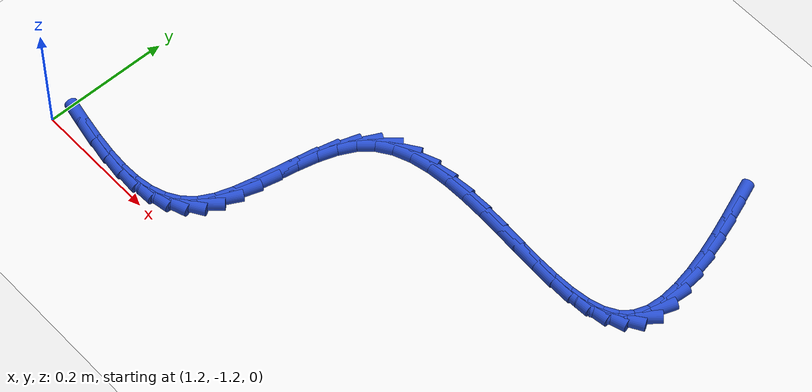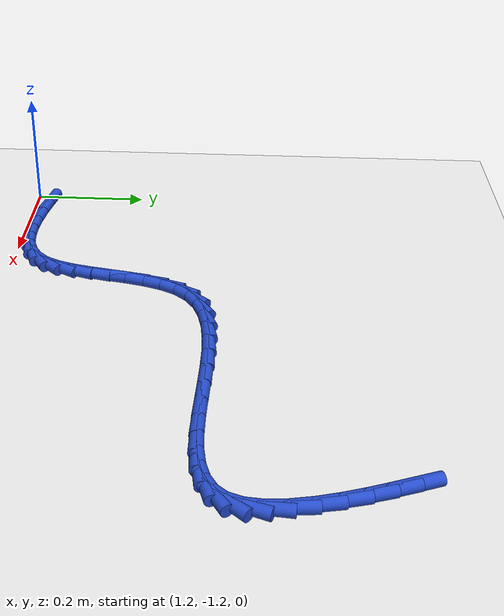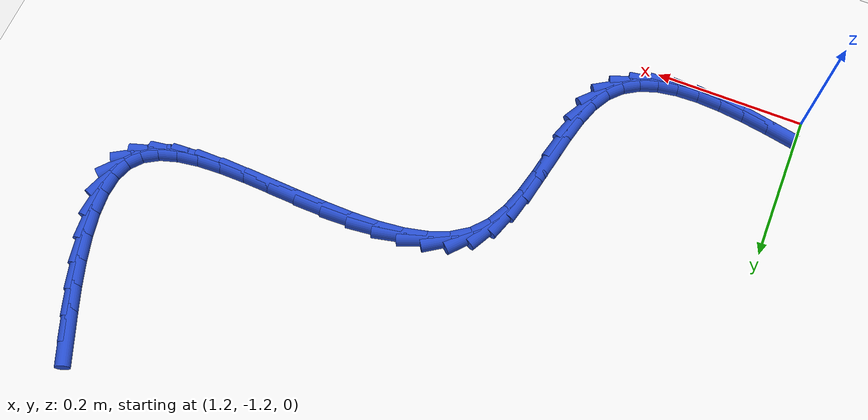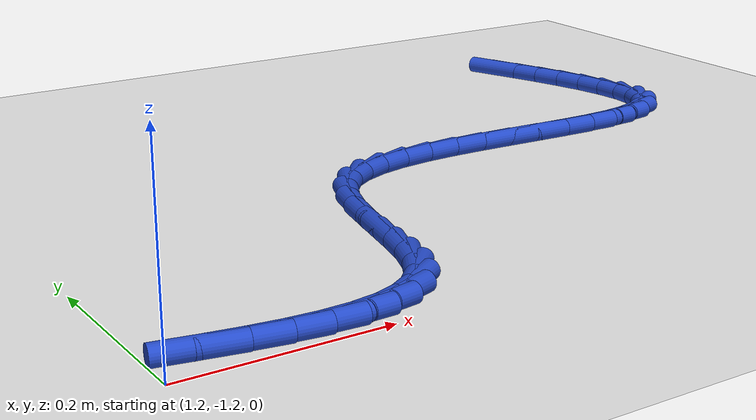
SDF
<sdf version="1.6">
 <world name="default">
  <model name="ground_plane">
   <static>1</static>
   <link name="link">
    <collision name="collision">
     <geometry><plane><normal>0 0 1</normal><size>100 100</size></plane></geometry>
     <surface><friction><ode><mu>100</mu><mu2>50</mu2></ode></friction></surface>
    </collision>
    <visual name="visual">
     <cast_shadows>0</cast_shadows>
     <geometry><plane><normal>0 0 1</normal><size>100 100</size></plane></geometry>
     <material>
      <script><uri>file://media/materials/scripts/gazebo.material</uri><name>Gazebo/WhiteGlow</name></script>
     </material>
    </visual>
   </link>
  </model>
  <model name="line">
   <link name="link_140">
    <pose>1.9676557023445043 -0.569890927512865 0.01 0 1.57 -1.2079735686474877</pose>
    <collision name="collision">
     <geometry><cylinder><radius>0.01</radius><length>0.08</length></cylinder></geometry>
    </collision>
    <visual name="visual">
     <material>
      <script><name>Gazebo/Blue</name><uri>file://media/materials/scripts/gazebo.material</uri></script>
     </material>
     <geometry><cylinder><radius>0.01</radius><length>0.08</length></cylinder></geometry>
    </visual>
   </link>
   <link name="link_141">
    <pose>1.978712325331627 -0.5990157409602582 0.01 0 1.57 -1.2244828984707348</pose>
    <collision name="collision">
     <geometry><cylinder><radius>0.01</radius><length>0.08</length></cylinder></geometry>
    </collision>
    <visual name="visual">
     <material>
      <script><name>Gazebo/Blue</name><uri>file://media/materials/scripts/gazebo.material</uri></script>
     </material>
     <geometry><cylinder><radius>0.01</radius><length>0.08</length></cylinder></geometry>
    </visual>
   </link>
   <link name="link_142">
    <pose>1.990123388798368 -0.630637922729604 0.01 0 1.57 -1.2606739748561613</pose>
    <collision name="collision">
     <geometry><cylinder><radius>0.01</radius><length>0.08</length></cylinder></geometry>
    </collision>
    <visual name="visual">
     <material>
      <script><name>Gazebo/Blue</name><uri>file://media/materials/scripts/gazebo.material</uri></script>
     </material>
     <geometry><cylinder><radius>0.01</radius><length>0.08</length></cylinder></geometry>
    </visual>
   </link>
   <link name="link_143">
    <pose>2.0007447004791317 -0.663781627338589 0.01 0 1.57 -1.3119986893219029</pose>
    <collision name="collision">
     <geometry><cylinder><radius>0.01</radius><length>0.08</length></cylinder></geometry>
    </collision>
    <visual name="visual">
     <material>
      <script><name>Gazebo/Blue</name><uri>file://media/materials/scripts/gazebo.material</uri></script>
     </material>
     <geometry><cylinder><radius>0.01</radius><length>0.08</length></cylinder></geometry>
    </visual>
   </link>
   <link name="link_144">
    <pose>2.009593115328049 -0.6972053585813258 0.01 0 1.57 -1.3852787895691296</pose>
    <collision name="collision">
     <geometry><cylinder><radius>0.01</radius><length>0.08</length></cylinder></geometry>
    </collision>
    <visual name="visual">
     <material>
      <script><name>Gazebo/Blue</name><uri>file://media/materials/scripts/gazebo.material</uri></script>
     </material>
     <geometry><cylinder><radius>0.01</radius><length>0.08</length></cylinder></geometry>
    </visual>
   </link>
   <link name="link_145">
    <pose>2.015685488299253 -0.729667620251926 0.01 0 1.57 -1.4931851570857861</pose>
    <collision name="collision">
     <geometry><cylinder><radius>0.01</radius><length>0.08</length></cylinder></geometry>
    </collision>
    <visual name="visual">
     <material>
      <script><name>Gazebo/Blue</name><uri>file://media/materials/scripts/gazebo.material</uri></script>
     </material>
     <geometry><cylinder><radius>0.01</radius><length>0.08</length></cylinder></geometry>
    </visual>
   </link>
   <link name="link_146">
    <pose>2.018038674346875 -0.7599269161445015 0.01 0 1.57 1.4826730866481757</pose>
    <collision name="collision">
     <geometry><cylinder><radius>0.01</radius><length>0.08</length></cylinder></geometry>
    </collision>
    <visual name="visual">
     <material>
      <script><name>Gazebo/Blue</name><uri>file://media/materials/scripts/gazebo.material</uri></script>
     </material>
     <geometry><cylinder><radius>0.01</radius><length>0.08</length></cylinder></geometry>
    </visual>
   </link>
   <link name="link_147">
    <pose>2.0156695284250477 -0.786741750053165 0.01 0 1.57 1.2209819781298759</pose>
    <collision name="collision">
     <geometry><cylinder><radius>0.01</radius><length>0.08</length></cylinder></geometry>
    </collision>
    <visual name="visual">
     <material>
      <script><name>Gazebo/Blue</name><uri>file://media/materials/scripts/gazebo.material</uri></script>
     </material>
     <geometry><cylinder><radius>0.01</radius><length>0.08</length></cylinder></geometry>
    </visual>
   </link>
   <link name="link_148">
    <pose>2.007596043659105 -0.8088719138595256 0.01 0 1.57 0.8626135725622103</pose>
    <collision name="collision">
     <geometry><cylinder><radius>0.01</radius><length>0.08</length></cylinder></geometry>
    </collision>
    <visual name="visual">
     <material>
      <script><name>Gazebo/Blue</name><uri>file://media/materials/scripts/gazebo.material</uri></script>
     </material>
     <geometry><cylinder><radius>0.01</radius><length>0.08</length></cylinder></geometry>
    </visual>
   </link>
   <link name="link_149">
    <pose>1.9932841418003282 -0.8255841278072766 0.01 0 1.57 0.5353439645966072</pose>
    <collision name="collision">
     <geometry><cylinder><radius>0.01</radius><length>0.08</length></cylinder></geometry>
    </collision>
    <visual name="visual">
     <material>
      <script><name>Gazebo/Blue</name><uri>file://media/materials/scripts/gazebo.material</uri></script>
     </material>
     <geometry><cylinder><radius>0.01</radius><length>0.08</length></cylinder></geometry>
    </visual>
   </link>
   <link name="link_150">
    <pose>1.9733271305540503 -0.8374209937918233 0.01 0 1.57 0.3007190029211852</pose>
    <collision name="collision">
     <geometry><cylinder><radius>0.01</radius><length>0.08</length></cylinder></geometry>
    </collision>
    <visual name="visual">
     <material>
      <script><name>Gazebo/Blue</name><uri>file://media/materials/scripts/gazebo.material</uri></script>
     </material>
     <geometry><cylinder><radius>0.01</radius><length>0.08</length></cylinder></geometry>
    </visual>
   </link>
   <link name="link_151">
    <pose>1.9484928992126154 -0.8451226906278088 0.01 0 1.57 0.1477129178081432</pose>
    <collision name="collision">
     <geometry><cylinder><radius>0.01</radius><length>0.08</length></cylinder></geometry>
    </collision>
    <visual name="visual">
     <material>
      <script><name>Gazebo/Blue</name><uri>file://media/materials/scripts/gazebo.material</uri></script>
     </material>
     <geometry><cylinder><radius>0.01</radius><length>0.08</length></cylinder></geometry>
    </visual>
   </link>
   <link name="link_152">
    <pose>1.9195493370683676 -0.8494293971298765 0.01 0 1.57 0.05112143483944317</pose>
    <collision name="collision">
     <geometry><cylinder><radius>0.01</radius><length>0.08</length></cylinder></geometry>
    </collision>
    <visual name="visual">
     <material>
      <script><name>Gazebo/Blue</name><uri>file://media/materials/scripts/gazebo.material</uri></script>
     </material>
     <geometry><cylinder><radius>0.01</radius><length>0.08</length></cylinder></geometry>
    </visual>
   </link>
   <link name="link_153">
    <pose>1.8872643334136507 -0.8510812921126691 0.01 0 1.57 -0.007537109327641745</pose>
    <collision name="collision">
     <geometry><cylinder><radius>0.01</radius><length>0.08</length></cylinder></geometry>
    </collision>
    <visual name="visual">
     <material>
      <script><name>Gazebo/Blue</name><uri>file://media/materials/scripts/gazebo.material</uri></script>
     </material>
     <geometry><cylinder><radius>0.01</radius><length>0.08</length></cylinder></geometry>
    </visual>
   </link>
   <link name="link_154">
    <pose>1.852405777540808 -0.85081855439083 0.01 0 1.57 -0.039178693422565906</pose>
    <collision name="collision">
     <geometry><cylinder><radius>0.01</radius><length>0.08</length></cylinder></geometry>
    </collision>
    <visual name="visual">
     <material>
      <script><name>Gazebo/Blue</name><uri>file://media/materials/scripts/gazebo.material</uri></script>
     </material>
     <geometry><cylinder><radius>0.01</radius><length>0.08</length></cylinder></geometry>
    </visual>
   </link>
   <link name="link_155">
    <pose>1.8157415587421832 -0.8493813627790023 0.01 0 1.57 -0.04959769378343504</pose>
    <collision name="collision">
     <geometry><cylinder><radius>0.01</radius><length>0.08</length></cylinder></geometry>
    </collision>
    <visual name="visual">
     <material>
      <script><name>Gazebo/Blue</name><uri>file://media/materials/scripts/gazebo.material</uri></script>
     </material>
     <geometry><cylinder><radius>0.01</radius><length>0.08</length></cylinder></geometry>
    </visual>
   </link>
   <link name="link_156">
    <pose>1.7780395663101223 -0.8475098960918295 0.01 0 1.57 -0.041206200416999655</pose>
    <collision name="collision">
     <geometry><cylinder><radius>0.01</radius><length>0.08</length></cylinder></geometry>
    </collision>
    <visual name="visual">
     <material>
      <script><name>Gazebo/Blue</name><uri>file://media/materials/scripts/gazebo.material</uri></script>
     </material>
     <geometry><cylinder><radius>0.01</radius><length>0.08</length></cylinder></geometry>
    </visual>
   </link>
   <link name="link_157">
    <pose>1.7400676895369682 -0.8459443331439543 0.01 0 1.57 -0.013861581327757319</pose>
    <collision name="collision">
     <geometry><cylinder><radius>0.01</radius><length>0.08</length></cylinder></geometry>
    </collision>
    <visual name="visual">
     <material>
      <script><name>Gazebo/Blue</name><uri>file://media/materials/scripts/gazebo.material</uri></script>
     </material>
     <geometry><cylinder><radius>0.01</radius><length>0.08</length></cylinder></geometry>
    </visual>
   </link>
   <link name="link_158">
    <pose>1.7025938177150648 -0.8454248527500201 0.01 0 1.57 0.03497197513817296</pose>
    <collision name="collision">
     <geometry><cylinder><radius>0.01</radius><length>0.08</length></cylinder></geometry>
    </collision>
    <visual name="visual">
     <material>
      <script><name>Gazebo/Blue</name><uri>file://media/materials/scripts/gazebo.material</uri></script>
     </material>
     <geometry><cylinder><radius>0.01</radius><length>0.08</length></cylinder></geometry>
    </visual>
   </link>
   <link name="link_159">
    <pose>1.666385840136756 -0.8466916337246702 0.01 0 1.57 0.11054415747935874</pose>
    <collision name="collision">
     <geometry><cylinder><radius>0.01</radius><length>0.08</length></cylinder></geometry>
    </collision>
    <visual name="visual">
     <material>
      <script><name>Gazebo/Blue</name><uri>file://media/materials/scripts/gazebo.material</uri></script>
     </material>
     <geometry><cylinder><radius>0.01</radius><length>0.08</length></cylinder></geometry>
    </visual>
   </link>
   <link name="link_160">
    <pose>1.6322116460943858 -0.8504848548825474 0.01 0 1.57 0.22134547547892014</pose>
    <collision name="collision">
     <geometry><cylinder><radius>0.01</radius><length>0.08</length></cylinder></geometry>
    </collision>
    <visual name="visual">
     <material>
      <script><name>Gazebo/Blue</name><uri>file://media/materials/scripts/gazebo.material</uri></script>
     </material>
     <geometry><cylinder><radius>0.01</radius><length>0.08</length></cylinder></geometry>
    </visual>
   </link>
   <link name="link_161">
    <pose>1.6008391248802976 -0.857544695038295 0.01 0 1.57 0.3788139703534417</pose>
    <collision name="collision">
     <geometry><cylinder><radius>0.01</radius><length>0.08</length></cylinder></geometry>
    </collision>
    <visual name="visual">
     <material>
      <script><name>Gazebo/Blue</name><uri>file://media/materials/scripts/gazebo.material</uri></script>
     </material>
     <geometry><cylinder><radius>0.01</radius><length>0.08</length></cylinder></geometry>
    </visual>
   </link>
   <link name="link_162">
    <pose>1.5730361657868352 -0.8686113330065564 0.01 0 1.57 0.5929997161850378</pose>
    <collision name="collision">
     <geometry><cylinder><radius>0.01</radius><length>0.08</length></cylinder></geometry>
    </collision>
    <visual name="visual">
     <material>
      <script><name>Gazebo/Blue</name><uri>file://media/materials/scripts/gazebo.material</uri></script>
     </material>
     <geometry><cylinder><radius>0.01</radius><length>0.08</length></cylinder></geometry>
    </visual>
   </link>
   <link name="link_163">
    <pose>1.5495706581063446 -0.8844249476019748 0.01 0 1.57 0.8555616494131871</pose>
    <collision name="collision">
     <geometry><cylinder><radius>0.01</radius><length>0.08</length></cylinder></geometry>
    </collision>
    <visual name="visual">
     <material>
      <script><name>Gazebo/Blue</name><uri>file://media/materials/scripts/gazebo.material</uri></script>
     </material>
     <geometry><cylinder><radius>0.01</radius><length>0.08</length></cylinder></geometry>
    </visual>
   </link>
   <link name="link_164">
    <pose>1.5311370556431132 -0.9056453907692704 0.01 0 1.57 1.0867116117132447</pose>
    <collision name="collision">
     <geometry><cylinder><radius>0.01</radius><length>0.08</length></cylinder></geometry>
    </collision>
    <visual name="visual">
     <material>
      <script><name>Gazebo/Blue</name><uri>file://media/materials/scripts/gazebo.material</uri></script>
     </material>
     <geometry><cylinder><radius>0.01</radius><length>0.08</length></cylinder></geometry>
    </visual>
   </link>
   <link name="link_165">
    <pose>1.5173882011063287 -0.9317931557975314 0.01 0 1.57 1.24095001674503</pose>
    <collision name="collision">
     <geometry><cylinder><radius>0.01</radius><length>0.08</length></cylinder></geometry>
    </collision>
    <visual name="visual">
     <material>
      <script><name>Gazebo/Blue</name><uri>file://media/materials/scripts/gazebo.material</uri></script>
     </material>
     <geometry><cylinder><radius>0.01</radius><length>0.08</length></cylinder></geometry>
    </visual>
   </link>
   <link name="link_166">
    <pose>1.5072033871126194 -0.9615425938814809 0.01 0 1.57 1.3329331202905748</pose>
    <collision name="collision">
     <geometry><cylinder><radius>0.01</radius><length>0.08</length></cylinder></geometry>
    </collision>
    <visual name="visual">
     <material>
      <script><name>Gazebo/Blue</name><uri>file://media/materials/scripts/gazebo.material</uri></script>
     </material>
     <geometry><cylinder><radius>0.01</radius><length>0.08</length></cylinder></geometry>
    </visual>
   </link>
   <link name="link_167">
    <pose>1.4994435751995643 -0.9935480048994917 0.01 0 1.57 1.3765953489614993</pose>
    <collision name="collision">
     <geometry><cylinder><radius>0.01</radius><length>0.08</length></cylinder></geometry>
    </collision>
    <visual name="visual">
     <material>
      <script><name>Gazebo/Blue</name><uri>file://media/materials/scripts/gazebo.material</uri></script>
     </material>
     <geometry><cylinder><radius>0.01</radius><length>0.08</length></cylinder></geometry>
    </visual>
   </link>
   <link name="link_168">
    <pose>1.4929697269047442 -1.0264636887299379 0.01 0 1.57 1.3784125771645126</pose>
    <collision name="collision">
     <geometry><cylinder><radius>0.01</radius><length>0.08</length></cylinder></geometry>
    </collision>
    <visual name="visual">
     <material>
      <script><name>Gazebo/Blue</name><uri>file://media/materials/scripts/gazebo.material</uri></script>
     </material>
     <geometry><cylinder><radius>0.01</radius><length>0.08</length></cylinder></geometry>
    </visual>
   </link>
   <link name="link_169">
    <pose>1.4866428037657373 -1.0589439452511924 0.01 0 1.57 1.336753532212949</pose>
    <collision name="collision">
     <geometry><cylinder><radius>0.01</radius><length>0.08</length></cylinder></geometry>
    </collision>
    <visual name="visual">
     <material>
      <script><name>Gazebo/Blue</name><uri>file://media/materials/scripts/gazebo.material</uri></script>
     </material>
     <geometry><cylinder><radius>0.01</radius><length>0.08</length></cylinder></geometry>
    </visual>
   </link>
   <link name="link_170">
    <pose>1.479323767320125 -1.0896430743416303 0.01 0 1.57 1.240601927793663</pose>
    <collision name="collision">
     <geometry><cylinder><radius>0.01</radius><length>0.08</length></cylinder></geometry>
    </collision>
    <visual name="visual">
     <material>
      <script><name>Gazebo/Blue</name><uri>file://media/materials/scripts/gazebo.material</uri></script>
     </material>
     <geometry><cylinder><radius>0.01</radius><length>0.08</length></cylinder></geometry>
    </visual>
   </link>
   <link name="link_171">
    <pose>1.4698735791054862 -1.117215375879623 0.01 0 1.57 1.067501723628188</pose>
    <collision name="collision">
     <geometry><cylinder><radius>0.01</radius><length>0.08</length></cylinder></geometry>
    </collision>
    <visual name="visual">
     <material>
      <script><name>Gazebo/Blue</name><uri>file://media/materials/scripts/gazebo.material</uri></script>
     </material>
     <geometry><cylinder><radius>0.01</radius><length>0.08</length></cylinder></geometry>
    </visual>
   </link>
   <link name="link_172">
    <pose>1.4571543431956062 -1.140316558541423 0.01 0 1.57 0.8157393158351761</pose>
    <collision name="collision">
     <geometry><cylinder><radius>0.01</radius><length>0.08</length></cylinder></geometry>
    </collision>
    <visual name="visual">
     <material>
      <script><name>Gazebo/Blue</name><uri>file://media/materials/scripts/gazebo.material</uri></script>
     </material>
     <geometry><cylinder><radius>0.01</radius><length>0.08</length></cylinder></geometry>
    </visual>
   </link>
   <link name="link_173">
    <pose>1.4404256646664466 -1.1580924673907862 0.01 0 1.57 0.5582986496138181</pose>
    <collision name="collision">
     <geometry><cylinder><radius>0.01</radius><length>0.08</length></cylinder></geometry>
    </collision>
    <visual name="visual">
     <material>
      <script><name>Gazebo/Blue</name><uri>file://media/materials/scripts/gazebo.material</uri></script>
     </material>
     <geometry><cylinder><radius>0.01</radius><length>0.08</length></cylinder></geometry>
    </visual>
   </link>
   <link name="link_174">
    <pose>1.4199261472268243 -1.170896096280157 0.01 0 1.57 0.3369570190999952</pose>
    <collision name="collision">
     <geometry><cylinder><radius>0.01</radius><length>0.08</length></cylinder></geometry>
    </collision>
    <visual name="visual">
     <material>
      <script><name>Gazebo/Blue</name><uri>file://media/materials/scripts/gazebo.material</uri></script>
     </material>
     <geometry><cylinder><radius>0.01</radius><length>0.08</length></cylinder></geometry>
    </visual>
   </link>
   <link name="link_175">
    <pose>1.3960424239247966 -1.179262965810799 0.01 0 1.57 0.1646207156036939</pose>
    <collision name="collision">
     <geometry><cylinder><radius>0.01</radius><length>0.08</length></cylinder></geometry>
    </collision>
    <visual name="visual">
     <material>
      <script><name>Gazebo/Blue</name><uri>file://media/materials/scripts/gazebo.material</uri></script>
     </material>
     <geometry><cylinder><radius>0.01</radius><length>0.08</length></cylinder></geometry>
    </visual>
   </link>
   <link name="link_176">
    <pose>1.3691611278084215 -1.1837285965839768 0.01 0 1.57 0.03727771215514266</pose>
    <collision name="collision">
     <geometry><cylinder><radius>0.01</radius><length>0.08</length></cylinder></geometry>
    </collision>
    <visual name="visual">
     <material>
      <script><name>Gazebo/Blue</name><uri>file://media/materials/scripts/gazebo.material</uri></script>
     </material>
     <geometry><cylinder><radius>0.01</radius><length>0.08</length></cylinder></geometry>
    </visual>
   </link>
   <link name="link_177">
    <pose>1.3396688919257544 -1.184828509200954 0.01 0 1.57 -0.05450062621023609</pose>
    <collision name="collision">
     <geometry><cylinder><radius>0.01</radius><length>0.08</length></cylinder></geometry>
    </collision>
    <visual name="visual">
     <material>
      <script><name>Gazebo/Blue</name><uri>file://media/materials/scripts/gazebo.material</uri></script>
     </material>
     <geometry><cylinder><radius>0.01</radius><length>0.08</length></cylinder></geometry>
    </visual>
   </link>
   <link name="link_178">
    <pose>1.3079523493248544 -1.183098224262995 0.01 0 1.57 -0.1193835621116033</pose>
    <collision name="collision">
     <geometry><cylinder><radius>0.01</radius><length>0.08</length></cylinder></geometry>
    </collision>
    <visual name="visual">
     <material>
      <script><name>Gazebo/Blue</name><uri>file://media/materials/scripts/gazebo.material</uri></script>
     </material>
     <geometry><cylinder><radius>0.01</radius><length>0.08</length></cylinder></geometry>
    </visual>
   </link>
   <link name="link_179">
    <pose>1.2743981330537786 -1.179073262371364 0.01 0 1.57 -0.163756066539126</pose>
    <collision name="collision">
     <geometry><cylinder><radius>0.01</radius><length>0.08</length></cylinder></geometry>
    </collision>
    <visual name="visual">
     <material>
      <script><name>Gazebo/Blue</name><uri>file://media/materials/scripts/gazebo.material</uri></script>
     </material>
     <geometry><cylinder><radius>0.01</radius><length>0.08</length></cylinder></geometry>
    </visual>
   </link>
   <link name="link_180">
    <pose>1.2393928761605832 -1.1732891441273243 0.01 0 1.57 -0.19189328787632487</pose>
    <collision name="collision">
     <geometry><cylinder><radius>0.01</radius><length>0.08</length></cylinder></geometry>
    </collision>
    <visual name="visual">
     <material>
      <script><name>Gazebo/Blue</name><uri>file://media/materials/scripts/gazebo.material</uri></script>
     </material>
     <geometry><cylinder><radius>0.01</radius><length>0.08</length></cylinder></geometry>
    </visual>
   </link>
  </model>
 </world>
</sdf>
